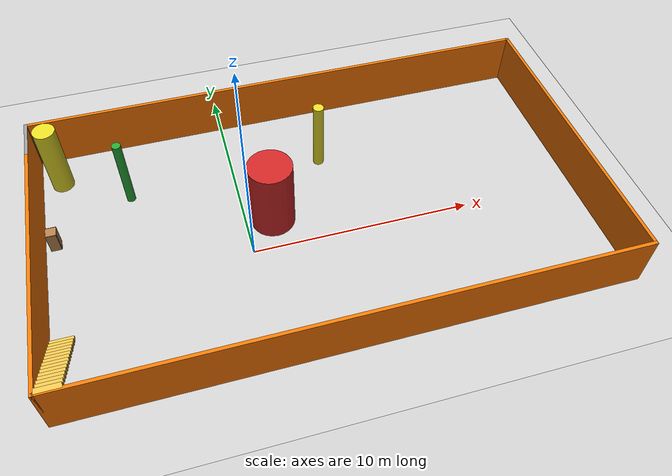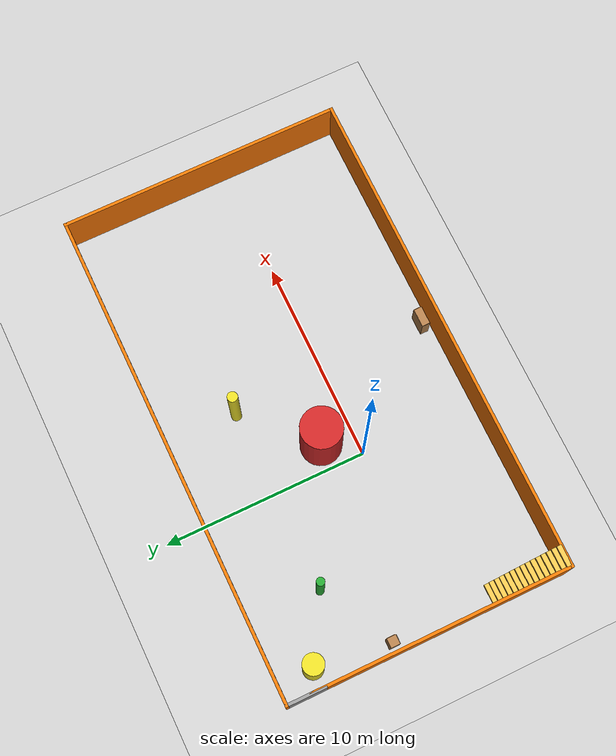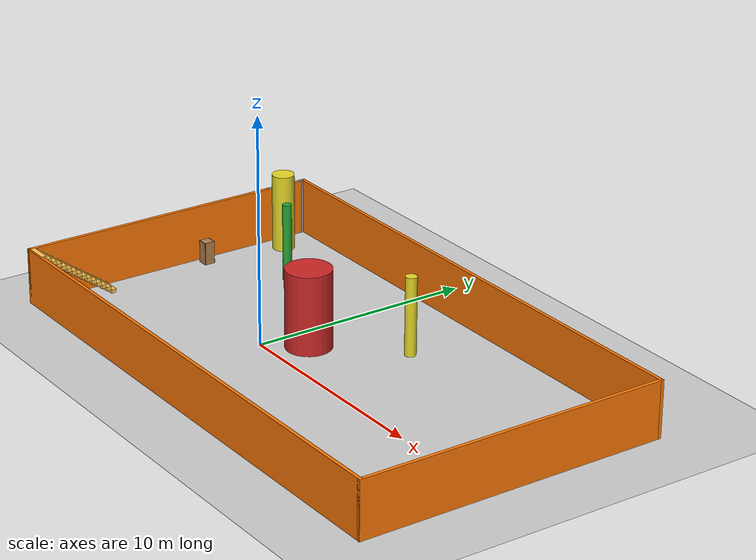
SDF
<sdf version="1.6">
 <world name="default">
  <light name="sun" type="directional">
   <pose>0 0 10 0 -0 0</pose>
   <diffuse>0.8 0.8 0.8 1</diffuse>
   <specular>0.2 0.2 0.2 1</specular>
   <attenuation>
    <range>1000</range>
    <constant>0.9</constant>
    <linear>0.01</linear>
    <quadratic>0.001</quadratic>
   </attenuation>
   <direction>-0.5 0.1 -0.9</direction>
  </light>
  <model name="ground_plane">
   <static>1</static>
   <link name="link">
    <collision name="collision">
     <geometry><plane><normal>0 0 1</normal><size>100 100</size></plane></geometry>
     <surface>
      <contact><collide_bitmask>65535</collide_bitmask></contact>
      <friction><ode><mu>100</mu><mu2>50</mu2></ode></friction>
     </surface>
    </collision>
    <visual name="visual">
     <cast_shadows>0</cast_shadows>
     <geometry><plane><normal>0 0 1</normal><size>100 100</size></plane></geometry>
     <material>
      <script><uri>file://media/materials/scripts/gazebo.material</uri><name>Gazebo/Grey</name></script>
     </material>
    </visual>
   </link>
  </model>
  <gravity>0 0 -9.8</gravity>
  <magnetic_field>6e-06 2.3e-05 -4.2e-05</magnetic_field>
  <atmosphere type="adiabatic"/>
  <physics name="default_physics" default="0" type="ode">
   <max_step_size>0.001</max_step_size>
   <real_time_factor>1</real_time_factor>
   <real_time_update_rate>1000</real_time_update_rate>
  </physics>
  <scene><ambient>0.4 0.4 0.4 1</ambient><background>0.7 0.7 0.7 1</background><shadows>1</shadows></scene>
  <spherical_coordinates>
   <surface_model>EARTH_WGS84</surface_model>
   <latitude_deg>0</latitude_deg>
   <longitude_deg>0</longitude_deg>
   <elevation>0</elevation>
   <heading_deg>0</heading_deg>
  </spherical_coordinates>
  <model name="woodsworld">
   <pose>3.25312 1.17902 0 0 -0 0</pose>
   <link name="Stairs_0">
    <visual name="Stairs_0_Visual_0">
     <pose>-11.6208 -3.54601 0.083333 0 -0 0</pose>
     <geometry><box><size>1 0.233333 0.166667</size></box></geometry>
     <material>
      <script><uri>file://media/materials/scripts/gazebo.material</uri><name>Gazebo/Grey</name></script>
      <ambient>1 0.764706 0.305882 1</ambient>
     </material>
     <meta><layer>0</layer></meta>
    </visual>
    <collision name="Stairs_0_Collision_0">
     <geometry><box><size>1 0.233333 0.166667</size></box></geometry>
     <pose>-11.6208 -3.54601 0.083333 0 -0 0</pose>
    </collision>
    <visual name="Stairs_0_Visual_1">
     <pose>-11.6208 -3.77934 0.25 0 -0 0</pose>
     <geometry><box><size>1 0.233333 0.166667</size></box></geometry>
     <material>
      <script><uri>file://media/materials/scripts/gazebo.material</uri><name>Gazebo/Grey</name></script>
      <ambient>1 0.764706 0.305882 1</ambient>
     </material>
     <meta><layer>0</layer></meta>
    </visual>
    <collision name="Stairs_0_Collision_1">
     <geometry><box><size>1 0.233333 0.166667</size></box></geometry>
     <pose>-11.6208 -3.77934 0.25 0 -0 0</pose>
    </collision>
    <visual name="Stairs_0_Visual_2">
     <pose>-11.6208 -4.01267 0.416667 0 -0 0</pose>
     <geometry><box><size>1 0.233333 0.166667</size></box></geometry>
     <material>
      <script><uri>file://media/materials/scripts/gazebo.material</uri><name>Gazebo/Grey</name></script>
      <ambient>1 0.764706 0.305882 1</ambient>
     </material>
     <meta><layer>0</layer></meta>
    </visual>
    <collision name="Stairs_0_Collision_2">
     <geometry><box><size>1 0.233333 0.166667</size></box></geometry>
     <pose>-11.6208 -4.01267 0.416667 0 -0 0</pose>
    </collision>
    <visual name="Stairs_0_Visual_3">
     <pose>-11.6208 -4.24601 0.583333 0 -0 0</pose>
     <geometry><box><size>1 0.233333 0.166667</size></box></geometry>
     <material>
      <script><uri>file://media/materials/scripts/gazebo.material</uri><name>Gazebo/Grey</name></script>
      <ambient>1 0.764706 0.305882 1</ambient>
     </material>
     <meta><layer>0</layer></meta>
    </visual>
    <collision name="Stairs_0_Collision_3">
     <geometry><box><size>1 0.233333 0.166667</size></box></geometry>
     <pose>-11.6208 -4.24601 0.583333 0 -0 0</pose>
    </collision>
    <visual name="Stairs_0_Visual_4">
     <pose>-11.6208 -4.47934 0.75 0 -0 0</pose>
     <geometry><box><size>1 0.233333 0.166667</size></box></geometry>
     <material>
      <script><uri>file://media/materials/scripts/gazebo.material</uri><name>Gazebo/Grey</name></script>
      <ambient>1 0.764706 0.305882 1</ambient>
     </material>
     <meta><layer>0</layer></meta>
    </visual>
    <collision name="Stairs_0_Collision_4">
     <geometry><box><size>1 0.233333 0.166667</size></box></geometry>
     <pose>-11.6208 -4.47934 0.75 0 -0 0</pose>
    </collision>
    <visual name="Stairs_0_Visual_5">
     <pose>-11.6208 -4.71267 0.916667 0 -0 0</pose>
     <geometry><box><size>1 0.233333 0.166667</size></box></geometry>
     <material>
      <script><uri>file://media/materials/scripts/gazebo.material</uri><name>Gazebo/Grey</name></script>
      <ambient>1 0.764706 0.305882 1</ambient>
     </material>
     <meta><layer>0</layer></meta>
    </visual>
    <collision name="Stairs_0_Collision_5">
     <geometry><box><size>1 0.233333 0.166667</size></box></geometry>
     <pose>-11.6208 -4.71267 0.916667 0 -0 0</pose>
    </collision>
    <visual name="Stairs_0_Visual_6">
     <pose>-11.6208 -4.94601 1.08333 0 -0 0</pose>
     <geometry><box><size>1 0.233333 0.166667</size></box></geometry>
     <material>
      <script><uri>file://media/materials/scripts/gazebo.material</uri><name>Gazebo/Grey</name></script>
      <ambient>1 0.764706 0.305882 1</ambient>
     </material>
     <meta><layer>0</layer></meta>
    </visual>
    <collision name="Stairs_0_Collision_6">
     <geometry><box><size>1 0.233333 0.166667</size></box></geometry>
     <pose>-11.6208 -4.94601 1.08333 0 -0 0</pose>
    </collision>
    <visual name="Stairs_0_Visual_7">
     <pose>-11.6208 -5.17934 1.25 0 -0 0</pose>
     <geometry><box><size>1 0.233333 0.166667</size></box></geometry>
     <material>
      <script><uri>file://media/materials/scripts/gazebo.material</uri><name>Gazebo/Grey</name></script>
      <ambient>1 0.764706 0.305882 1</ambient>
     </material>
     <meta><layer>0</layer></meta>
    </visual>
    <collision name="Stairs_0_Collision_7">
     <geometry><box><size>1 0.233333 0.166667</size></box></geometry>
     <pose>-11.6208 -5.17934 1.25 0 -0 0</pose>
    </collision>
    <visual name="Stairs_0_Visual_8">
     <pose>-11.6208 -5.41267 1.41667 0 -0 0</pose>
     <geometry><box><size>1 0.233333 0.166667</size></box></geometry>
     <material>
      <script><uri>file://media/materials/scripts/gazebo.material</uri><name>Gazebo/Grey</name></script>
      <ambient>1 0.764706 0.305882 1</ambient>
     </material>
     <meta><layer>0</layer></meta>
    </visual>
    <collision name="Stairs_0_Collision_8">
     <geometry><box><size>1 0.233333 0.166667</size></box></geometry>
     <pose>-11.6208 -5.41267 1.41667 0 -0 0</pose>
    </collision>
    <visual name="Stairs_0_Visual_9">
     <pose>-11.6208 -5.64601 1.58333 0 -0 0</pose>
     <geometry><box><size>1 0.233333 0.166667</size></box></geometry>
     <material>
      <script><uri>file://media/materials/scripts/gazebo.material</uri><name>Gazebo/Grey</name></script>
      <ambient>1 0.764706 0.305882 1</ambient>
     </material>
     <meta><layer>0</layer></meta>
    </visual>
    <collision name="Stairs_0_Collision_9">
     <geometry><box><size>1 0.233333 0.166667</size></box></geometry>
     <pose>-11.6208 -5.64601 1.58333 0 -0 0</pose>
    </collision>
    <visual name="Stairs_0_Visual_10">
     <pose>-11.6208 -5.87934 1.75 0 -0 0</pose>
     <geometry><box><size>1 0.233333 0.166667</size></box></geometry>
     <material>
      <script><uri>file://media/materials/scripts/gazebo.material</uri><name>Gazebo/Grey</name></script>
      <ambient>1 0.764706 0.305882 1</ambient>
     </material>
     <meta><layer>0</layer></meta>
    </visual>
    <collision name="Stairs_0_Collision_10">
     <geometry><box><size>1 0.233333 0.166667</size></box></geometry>
     <pose>-11.6208 -5.87934 1.75 0 -0 0</pose>
    </collision>
    <visual name="Stairs_0_Visual_11">
     <pose>-11.6208 -6.11267 1.91667 0 -0 0</pose>
     <geometry><box><size>1 0.233333 0.166667</size></box></geometry>
     <material>
      <script><uri>file://media/materials/scripts/gazebo.material</uri><name>Gazebo/Grey</name></script>
      <ambient>1 0.764706 0.305882 1</ambient>
     </material>
     <meta><layer>0</layer></meta>
    </visual>
    <collision name="Stairs_0_Collision_11">
     <geometry><box><size>1 0.233333 0.166667</size></box></geometry>
     <pose>-11.6208 -6.11267 1.91667 0 -0 0</pose>
    </collision>
    <visual name="Stairs_0_Visual_12">
     <pose>-11.6208 -6.34601 2.08333 0 -0 0</pose>
     <geometry><box><size>1 0.233333 0.166667</size></box></geometry>
     <material>
      <script><uri>file://media/materials/scripts/gazebo.material</uri><name>Gazebo/Grey</name></script>
      <ambient>1 0.764706 0.305882 1</ambient>
     </material>
     <meta><layer>0</layer></meta>
    </visual>
    <collision name="Stairs_0_Collision_12">
     <geometry><box><size>1 0.233333 0.166667</size></box></geometry>
     <pose>-11.6208 -6.34601 2.08333 0 -0 0</pose>
    </collision>
    <visual name="Stairs_0_Visual_13">
     <pose>-11.6208 -6.57934 2.25 0 -0 0</pose>
     <geometry><box><size>1 0.233333 0.166667</size></box></geometry>
     <material>
      <script><uri>file://media/materials/scripts/gazebo.material</uri><name>Gazebo/Grey</name></script>
      <ambient>1 0.764706 0.305882 1</ambient>
     </material>
     <meta><layer>0</layer></meta>
    </visual>
    <collision name="Stairs_0_Collision_13">
     <geometry><box><size>1 0.233333 0.166667</size></box></geometry>
     <pose>-11.6208 -6.57934 2.25 0 -0 0</pose>
    </collision>
    <visual name="Stairs_0_Visual_14">
     <pose>-11.6208 -6.81267 2.41667 0 -0 0</pose>
     <geometry><box><size>1 0.233333 0.166667</size></box></geometry>
     <material>
      <script><uri>file://media/materials/scripts/gazebo.material</uri><name>Gazebo/Grey</name></script>
      <ambient>1 0.764706 0.305882 1</ambient>
     </material>
     <meta><layer>0</layer></meta>
    </visual>
    <collision name="Stairs_0_Collision_14">
     <geometry><box><size>1 0.233333 0.166667</size></box></geometry>
     <pose>-11.6208 -6.81267 2.41667 0 -0 0</pose>
    </collision>
   </link>
   <link name="Wall_0">
    <collision name="Wall_0_Collision">
     <geometry><box><size>13.75 0.15 2.5</size></box></geometry>
     <pose>0 0 1.25 0 -0 0</pose>
    </collision>
    <visual name="Wall_0_Visual">
     <pose>0 0 1.25 0 -0 0</pose>
     <geometry><box><size>13.75 0.15 2.5</size></box></geometry>
     <material>
      <script><uri>file://media/materials/scripts/gazebo.material</uri><name>Gazebo/Grey</name></script>
      <ambient>0.996078 0.47451 0.0196078 1</ambient>
     </material>
     <meta><layer>0</layer></meta>
    </visual>
    <pose>-12.175 -0.125 0 0 -0 -1.5708</pose>
   </link>
   <link name="Wall_1">
    <collision name="Wall_1_Collision">
     <geometry><box><size>24.5 0.15 2.5</size></box></geometry>
     <pose>0 0 1.25 0 -0 0</pose>
    </collision>
    <visual name="Wall_1_Visual">
     <pose>0 0 1.25 0 -0 0</pose>
     <geometry><box><size>24.5 0.15 2.5</size></box></geometry>
     <material>
      <script><uri>file://media/materials/scripts/gazebo.material</uri><name>Gazebo/Grey</name></script>
      <ambient>0.996078 0.47451 0.0196078 1</ambient>
     </material>
     <meta><layer>0</layer></meta>
    </visual>
    <pose>-0 -6.925 0 0 -0 0</pose>
   </link>
   <link name="Wall_2">
    <collision name="Wall_2_Collision">
     <geometry><box><size>14 0.15 2.5</size></box></geometry>
     <pose>0 0 1.25 0 -0 0</pose>
    </collision>
    <visual name="Wall_2_Visual">
     <pose>0 0 1.25 0 -0 0</pose>
     <geometry><box><size>14 0.15 2.5</size></box></geometry>
     <material>
      <script><uri>file://media/materials/scripts/gazebo.material</uri><name>Gazebo/Grey</name></script>
      <ambient>0.996078 0.47451 0.0196078 1</ambient>
     </material>
     <meta><layer>0</layer></meta>
    </visual>
    <pose>12.175 0 0 0 -0 1.5708</pose>
   </link>
   <link name="Wall_3">
    <collision name="Wall_3_Collision">
     <geometry><box><size>24.5 0.15 2.5</size></box></geometry>
     <pose>0 0 1.25 0 -0 0</pose>
    </collision>
    <visual name="Wall_3_Visual">
     <pose>0 0 1.25 0 -0 0</pose>
     <geometry><box><size>24.5 0.15 2.5</size></box></geometry>
     <material>
      <script><uri>file://media/materials/scripts/gazebo.material</uri><name>Gazebo/Grey</name></script>
      <ambient>0.996078 0.47451 0.0196078 1</ambient>
     </material>
     <meta><layer>0</layer></meta>
    </visual>
    <pose>-0 6.925 0 0 -0 3.14159</pose>
   </link>
   <link name="Wall_4">
    <collision name="Wall_4_Collision">
     <geometry><box><size>2 0.15 2.5</size></box></geometry>
     <pose>0 0 1.25 0 -0 0</pose>
    </collision>
    <visual name="Wall_4_Visual">
     <pose>0 0 1.25 0 -0 0</pose>
     <geometry><box><size>2 0.15 2.5</size></box></geometry>
     <material>
      <script><uri>file://media/materials/scripts/gazebo.material</uri><name>Gazebo/Grey</name></script>
      <ambient>1 1 1 1</ambient>
     </material>
     <meta><layer>0</layer></meta>
    </visual>
    <pose>-12.175 6 0 0 -0 -1.5708</pose>
   </link>
   <static>1</static>
  </model>
  <model name="pillar_s">
   <link name="link">
    <inertial>
     <mass>1000</mass>
     <inertia><ixx>1</ixx><ixy>0</ixy><ixz>0</ixz><iyy>1</iyy><iyz>0</iyz><izz>1</izz></inertia>
    </inertial>
    <visual name="visual">
     <geometry><cylinder><radius>0.2</radius><length>3.5</length></cylinder></geometry>
     <material>
      <script><name>Gazebo/Green</name><uri>file://media/materials/scripts/gazebo.material</uri></script>
      <shader type="pixel"><normal_map>__default__</normal_map></shader>
      <ambient>0 0.914 0 1</ambient>
      <diffuse>0.7 0.7 0.7 1</diffuse>
      <specular>0.01 0.01 0.01 1</specular>
      <emissive>0 0 0 1</emissive>
     </material>
    </visual>
    <collision name="collision">
     <geometry><cylinder><radius>0.2</radius><length>3.5</length></cylinder></geometry>
    </collision>
   </link>
   <static>0</static>
   <pose>-4.89274 4.56988 1.75 1.4e-05 4e-06 0.036222</pose>
  </model>
  <model name="pillar_s_yellow">
   <link name="link">
    <inertial>
     <mass>500</mass>
     <inertia><ixx>1</ixx><ixy>0</ixy><ixz>0</ixz><iyy>1</iyy><iyz>0</iyz><izz>1</izz></inertia>
    </inertial>
    <visual name="visual">
     <geometry><cylinder><radius>0.25</radius><length>3.5</length></cylinder></geometry>
     <material>
      <script><name>Gazebo/Yellow</name><uri>file://media/materials/scripts/gazebo.material</uri></script>
      <shader type="pixel"><normal_map>__default__</normal_map></shader>
      <ambient>0.988 0.914 0.31 1</ambient>
     </material>
    </visual>
    <collision name="collision">
     <geometry><cylinder><radius>0.25</radius><length>3.5</length></cylinder></geometry>
    </collision>
   </link>
   <static>0</static>
   <pose>4.19521 4.57192 1.74999 7e-06 5e-06 0.016455</pose>
  </model>
  <model name="pillar_l">
   <link name="link">
    <inertial>
     <mass>50</mass>
     <inertia><ixx>1</ixx><ixy>0</ixy><ixz>0</ixz><iyy>1</iyy><iyz>0</iyz><izz>1</izz></inertia>
    </inertial>
    <visual name="visual">
     <geometry><cylinder><radius>1</radius><length>3.5</length></cylinder></geometry>
     <material>
      <script><name>Gazebo/Red</name><uri>file://media/materials/scripts/gazebo.material</uri></script>
      <shader type="pixel"><normal_map>__default__</normal_map></shader>
      <ambient>0.988 0 0 1</ambient>
      <diffuse>0.7 0.7 0.7 1</diffuse>
      <specular>0.01 0.01 0.01 1</specular>
      <emissive>0 0 0 1</emissive>
     </material>
    </visual>
    <collision name="collision">
     <geometry><cylinder><radius>1</radius><length>3.5</length></cylinder></geometry>
    </collision>
   </link>
   <static>0</static>
   <pose>1.22511 1.59137 1.75 2e-06 2e-06 0.001571</pose>
  </model>
  <model name="pillar_m">
   <link name="link">
    <inertial>
     <mass>1000</mass>
     <inertia><ixx>1</ixx><ixy>0</ixy><ixz>0</ixz><iyy>1</iyy><iyz>0</iyz><izz>1</izz></inertia>
    </inertial>
    <visual name="visual">
     <geometry><cylinder><radius>0.5</radius><length>3.5</length></cylinder></geometry>
     <material>
      <script><name>Gazebo/Yellow</name><uri>file://media/materials/scripts/gazebo.material</uri></script>
      <shader type="pixel"><normal_map>__default__</normal_map></shader>
      <ambient>0.988 0.914 0.31 1</ambient>
      <diffuse>0.7 0.7 0.7 1</diffuse>
      <specular>0.01 0.01 0.01 1</specular>
      <emissive>0 0 0 1</emissive>
     </material>
    </visual>
    <collision name="collision">
     <geometry><cylinder><radius>0.5</radius><length>3.5</length></cylinder></geometry>
    </collision>
   </link>
   <static>0</static>
   <pose>-7.90111 6.34937 1.75 4e-06 -2e-06 0.071806</pose>
  </model>
  <model name="bookshelf">
   <static>1</static>
   <link name="link">
    <inertial><mass>1</mass></inertial>
    <collision name="back">
     <pose>0 0.005 0.6 0 -0 0</pose>
     <geometry><box><size>0.9 0.01 1.2</size></box></geometry>
    </collision>
    <visual name="visual1">
     <pose>0 0.005 0.6 0 -0 0</pose>
     <geometry><box><size>0.9 0.01 1.2</size></box></geometry>
     <material>
      <script><uri>file://media/materials/scripts/gazebo.material</uri><name>Gazebo/Wood</name></script>
     </material>
    </visual>
    <collision name="left_side">
     <pose>0.45 -0.195 0.6 0 -0 0</pose>
     <geometry><box><size>0.02 0.4 1.2</size></box></geometry>
    </collision>
    <visual name="visual2">
     <pose>0.45 -0.195 0.6 0 -0 0</pose>
     <geometry><box><size>0.02 0.4 1.2</size></box></geometry>
     <material>
      <script><uri>file://media/materials/scripts/gazebo.material</uri><name>Gazebo/Wood</name></script>
     </material>
    </visual>
    <collision name="right_side">
     <pose>-0.45 -0.195 0.6 0 -0 0</pose>
     <geometry><box><size>0.02 0.4 1.2</size></box></geometry>
    </collision>
    <visual name="visual3">
     <pose>-0.45 -0.195 0.6 0 -0 0</pose>
     <geometry><box><size>0.02 0.4 1.2</size></box></geometry>
     <material>
      <script><uri>file://media/materials/scripts/gazebo.material</uri><name>Gazebo/Wood</name></script>
     </material>
    </visual>
    <collision name="bottom">
     <pose>0 -0.195 0.03 0 -0 0</pose>
     <geometry><box><size>0.88 0.4 0.06</size></box></geometry>
    </collision>
    <visual name="visual4">
     <pose>0 -0.195 0.03 0 -0 0</pose>
     <geometry><box><size>0.88 0.4 0.06</size></box></geometry>
     <material>
      <script><uri>file://media/materials/scripts/gazebo.material</uri><name>Gazebo/Wood</name></script>
     </material>
    </visual>
    <collision name="top">
     <pose>0 -0.195 1.19 0 -0 0</pose>
     <geometry><box><size>0.88 0.4 0.02</size></box></geometry>
    </collision>
    <visual name="visual5">
     <pose>0 -0.195 1.19 0 -0 0</pose>
     <geometry><box><size>0.88 0.4 0.02</size></box></geometry>
     <material>
      <script><uri>file://media/materials/scripts/gazebo.material</uri><name>Gazebo/Wood</name></script>
     </material>
    </visual>
    <collision name="low_shelf">
     <pose>0 -0.195 0.43 0 -0 0</pose>
     <geometry><box><size>0.88 0.4 0.02</size></box></geometry>
    </collision>
    <visual name="visual6">
     <pose>0 -0.195 0.43 0 -0 0</pose>
     <geometry><box><size>0.88 0.4 0.02</size></box></geometry>
     <material>
      <script><uri>file://media/materials/scripts/gazebo.material</uri><name>Gazebo/Wood</name></script>
     </material>
    </visual>
    <collision name="high_shelf">
     <pose>0 -0.195 0.8 0 -0 0</pose>
     <geometry><box><size>0.88 0.4 0.02</size></box></geometry>
    </collision>
    <visual name="visual7">
     <pose>0 -0.195 0.8 0 -0 0</pose>
     <geometry><box><size>0.88 0.4 0.02</size></box></geometry>
     <material>
      <script><uri>file://media/materials/scripts/gazebo.material</uri><name>Gazebo/Wood</name></script>
     </material>
    </visual>
   </link>
   <pose>4.52866 -5.05479 0 0 -0 0</pose>
  </model>
  <model name="cabinet_0">
   <static>1</static>
   <link name="cabinet_bottom_plate">
    <inertial>
     <pose>0 0 -1 0 -0 0</pose>
     <inertia><ixx>2.05</ixx><ixy>0</ixy><ixz>0</ixz><iyy>2.05</iyy><iyz>0</iyz><izz>2.05</izz></inertia>
     <mass>25</mass>
    </inertial>
    <collision name="cabinet_bottom_plate_geom">
     <pose>0 0 0.01 0 -0 0</pose>
     <geometry><box><size>0.45 0.45 0.02</size></box></geometry>
    </collision>
    <visual name="cabinet_bottom_plate_geom_visual">
     <pose>0 0 0.01 0 -0 0</pose>
     <geometry><box><size>0.45 0.45 0.02</size></box></geometry>
     <material>
      <script><uri>file://media/materials/scripts/gazebo.material</uri><name>Gazebo/Wood</name></script>
     </material>
    </visual>
    <collision name="cabinet_bottom_plate_geom_cabinet_back_plate">
     <pose>0.235 0 0.51 0 -0 0</pose>
     <geometry><box><size>0.02 0.45 1.02</size></box></geometry>
    </collision>
    <visual name="cabinet_bottom_plate_geom_cabinet_back_plate_visual">
     <pose>0.235 0 0.51 0 -0 0</pose>
     <geometry><box><size>0.02 0.45 1.02</size></box></geometry>
     <material>
      <script><uri>file://media/materials/scripts/gazebo.material</uri><name>Gazebo/Wood</name></script>
     </material>
    </visual>
    <collision name="cabinet_bottom_plate_geom_cabinet_left_plate">
     <pose>0 0.235 0.51 0 -0 0</pose>
     <geometry><box><size>0.45 0.02 1.02</size></box></geometry>
    </collision>
    <visual name="cabinet_bottom_plate_geom_cabinet_left_plate_visual">
     <pose>0 0.235 0.51 0 -0 0</pose>
     <geometry><box><size>0.45 0.02 1.02</size></box></geometry>
     <material>
      <script><uri>file://media/materials/scripts/gazebo.material</uri><name>Gazebo/Wood</name></script>
     </material>
    </visual>
    <collision name="cabinet_bottom_plate_geom_cabinet_middle_plate">
     <pose>0 0 0.51 0 -0 0</pose>
     <geometry><box><size>0.45 0.45 0.02</size></box></geometry>
    </collision>
    <visual name="cabinet_bottom_plate_geom_cabinet_middle_plate_visual">
     <pose>0 0 0.51 0 -0 0</pose>
     <geometry><box><size>0.45 0.45 0.02</size></box></geometry>
     <material>
      <script><uri>file://media/materials/scripts/gazebo.material</uri><name>Gazebo/Wood</name></script>
     </material>
    </visual>
    <collision name="cabinet_bottom_plate_geom_cabinet_right_plate">
     <pose>0 -0.235 0.51 0 -0 0</pose>
     <geometry><box><size>0.45 0.02 1.02</size></box></geometry>
    </collision>
    <visual name="cabinet_bottom_plate_geom_cabinet_right_plate_visual">
     <pose>0 -0.235 0.51 0 -0 0</pose>
     <geometry><box><size>0.45 0.02 1.02</size></box></geometry>
     <material>
      <script><uri>file://media/materials/scripts/gazebo.material</uri><name>Gazebo/Wood</name></script>
     </material>
    </visual>
    <collision name="cabinet_bottom_plate_geom_cabinet_top_plate">
     <pose>0 0 1.01 0 -0 0</pose>
     <geometry><box><size>0.45 0.45 0.02</size></box></geometry>
    </collision>
    <visual name="cabinet_bottom_plate_geom_cabinet_top_plate_visual">
     <pose>0 0 1.01 0 -0 0</pose>
     <geometry><box><size>0.45 0.45 0.02</size></box></geometry>
     <material>
      <script><uri>file://media/materials/scripts/gazebo.material</uri><name>Gazebo/Wood</name></script>
     </material>
    </visual>
   </link>
   <pose>-8.39264 2.65018 0 0 -0 0</pose>
  </model>
  <plugin name="ros_interface_plugin" filename="librotors_gazebo_ros_interface_plugin.so"/>
 </world>
</sdf>
